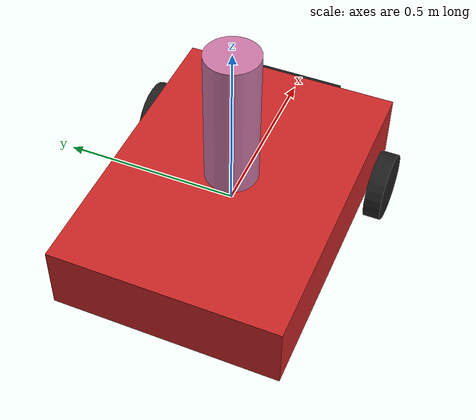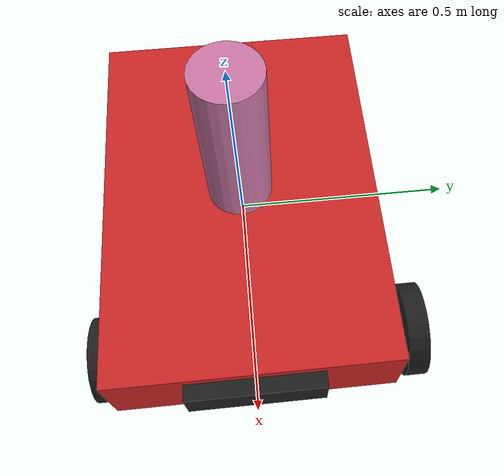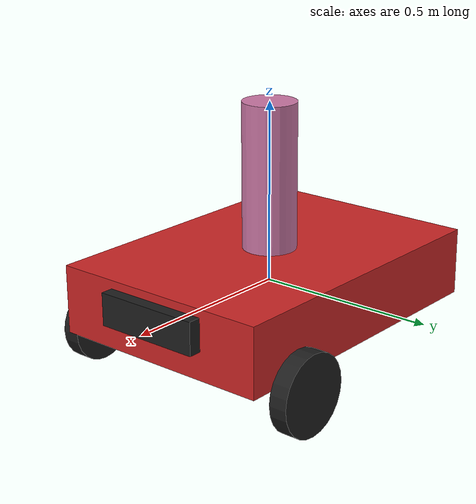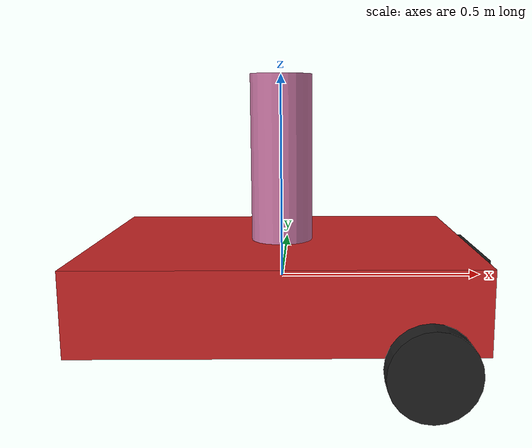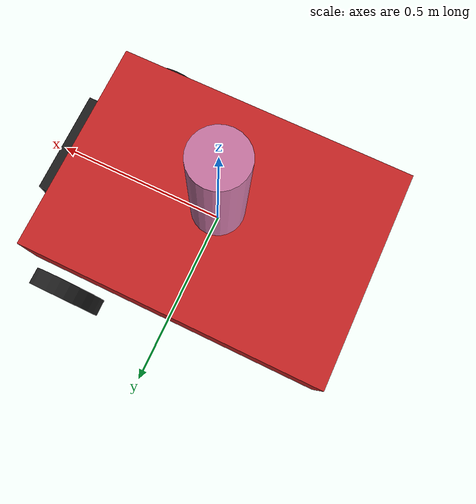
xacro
<?xml version="1.0"?>
<robot xmlns:xacro="http://www.ros.org/wiki/xacro" name="my_robot">

    <!--................................ XACRO CONSTANTS .............................. -->

    <xacro:property name="chassis_mass" value="70"/>
    <xacro:property name="chassis_length" value="0.9"/>
    <xacro:property name="chassis_width" value="0.64"/>
    <xacro:property name="chassis_height" value="0.19"/>

    <xacro:property name="traction_wheel_mass_1" value="1"/>
    <xacro:property name="traction_wheel_base_1" value="0.88"/>
    <xacro:property name="traction_max_wheel_torque_1" value="20000"/>
    <xacro:property name="traction_wheel_static_friction_1" value="0.9"/>
    <xacro:property name="traction_wheel_dynamic_friction_1" value="0.8"/>

    <xacro:property name="traction_wheel_mass_2" value="1"/>
    <xacro:property name="traction_wheel_base_2" value="0.88"/>
    <xacro:property name="traction_max_wheel_torque_2" value="20000"/>
    <xacro:property name="traction_wheel_static_friction_2" value="0.5"/>
    <xacro:property name="traction_wheel_dynamic_friction_2" value="0.8"/>

    <xacro:property name="trolley_wheel_mass" value="0.1"/>
    <xacro:property name="trolley_track_width" value="0.54"/>
    <xacro:property name="trolley_wheel_friction" value="0.0"/>
    <xacro:property name="trolley_wheel_radius" value="0.06"/>
    <!-- a small constant -->
    <xacro:property name="eps" value="0.002"/>

    <xacro:property name="traction_wheel_radius_1" value="0.11"/>
    <xacro:property name="traction_wheel_width_1" value="0.05"/>
    <xacro:property name="traction_track_width_1" value="0.75"/>

    <xacro:property name="traction_wheel_radius_2" value="0.1"/>
    <xacro:property name="traction_wheel_width_2" value="0.05"/>
    <xacro:property name="traction_track_width_2" value="0.7"/>

    <xacro:property name="three_d_lidar_height" value="0.5"/>

    <xacro:property name="three_d_lidar_update_rate" value="30"/>
    <xacro:property name="three_d_lidar_horizontal_sample_size" value="361"/>
    <xacro:property name="three_d_lidar_vertical_sample_size" value="181"/>
    <xacro:property name="three_d_lidar_horizontal_min_angle" value="0"/>
    <xacro:property name="three_d_lidar_horizontal_max_angle" value="360"/>
    <xacro:property name="three_d_lidar_vertical_min_angle" value="0"/>
    <xacro:property name="three_d_lidar_vertical_max_angle" value="180"/>
    <xacro:property name="three_d_lidar_min_range" value="0.55"/>
    <xacro:property name="three_d_lidar_max_range" value="16"/>

    <xacro:property name="camera_baseline" value="0.06"/>
    <xacro:property name="camera_height" value="0.10"/>
    <xacro:property name="camera_horizontal_fov" value="60"/>

    <xacro:arg name="robot_namespace" default=""/>
    <xacro:arg name="wheel_odom_topic" default="odom" />
    <xacro:arg name="camera_enabled" default="true" />
    <xacro:arg name="three_d_lidar_height" default="0" />
    <xacro:arg name="publish_wheel_odom_tf" default="true" />
    <xacro:arg name="conveyor_enabled" default="false"/>
    <xacro:arg name="ground_truth_frame" default="map"/>
    <xacro:arg name="sim_gz" default="false" />

    <!-- ............................... LOAD MACROS ................................. -->

    <xacro:include filename="$(find simple_amr_sim)/urdf/materials.xacro"/>
    <xacro:include filename="$(find simple_amr_sim)/urdf/macros.xacro"/>

    <xacro:if value="$(arg sim_gz)">
        <xacro:include filename="$(find simple_amr_sim)/urdf/gz.xacro"/>
    </xacro:if>

    <!-- ................................ BASE LINK .................................. -->

    <link name="base_link"/>

    <link name="chassis_link">

        <collision>
            <origin xyz="0 0 0" rpy="0 0 0" />
            <geometry>
                <box size="${chassis_length} ${chassis_width} ${chassis_height}"/>
            </geometry>
        </collision>

        <visual>
            <origin xyz="0 0 0" rpy="0 0 0" />
            <geometry>
                <box size="${chassis_length} ${chassis_width} ${chassis_height}"/>
            </geometry>
            <material name="red"/>
        </visual>

        <inertial>
            <mass value="${chassis_mass}" />
            <xacro:box_inertia m="${chassis_mass}" x="${chassis_length}" y="${chassis_width}" z = "${chassis_height}"/>
        </inertial>

    </link>

    <joint name="chassis_joint" type="fixed">
        <parent link="base_link"/>
        <child link="chassis_link"/>
        <origin xyz="0.0 0 0" rpy="0 0 0.0" />
    </joint>

    <!-- ................................ WHEELS ..................................... -->

    <xacro:traction_wheel_1 cardinality="middle" dexterity="left" origin_x="${chassis_width/2}" origin_y="${traction_track_width_1/2}" origin_z="-${chassis_height/2+2*trolley_wheel_radius+eps-traction_wheel_radius_1}"/>

    <xacro:traction_wheel_2 cardinality="middle" dexterity="right" origin_x="${chassis_width/2}" origin_y="-${traction_track_width_2/2}" origin_z="-${chassis_height/2+2*trolley_wheel_radius+eps-traction_wheel_radius_2}"/>

    <!-- ............................. CAMERA ........................................ -->

    <xacro:if value="$(arg camera_enabled)">

        <!-- KINECT CAMERA -->

        <link name="kinect_camera">

            <collision>
                <origin xyz="0 0 0" rpy="0 0 0" />
                <geometry>
                    <box size="0.07 0.3 0.09"/>
                </geometry>
            </collision>

            <visual>
                <origin xyz="0 0 0" rpy="0 0 0" />
                <geometry>
                    <box size="0.07 0.3 0.09"/>
                </geometry>
                <material name="black"/>
            </visual>

            <inertial>
                <mass value="0.01"/>
                <xacro:box_inertia m="0.01" x="0.07" y="0.3" z = "0.09"/>
            </inertial>

        </link>

        <joint name="kinect_camera_joint" type="fixed">
            <origin rpy="0 0 0" xyz="${chassis_length/2} 0 ${chassis_height/7}"/>
            <parent link="base_link"/>
            <child link="kinect_camera"/>
        </joint>

        <link name="kinect_camera_optical"/>

        <joint name="kinect_camera_optical_joint" type="fixed">
            <origin xyz="0 0 0" rpy="${-pi/2} 0 ${-pi/2}"/>
            <parent link="kinect_camera"/>
            <child link="kinect_camera_optical"/>
        </joint>

    </xacro:if>
        <!-- ............................. 3D LIDAR STAND ........................................ -->

        <link name="three_d_lidar_stand">
            <collision>
                <origin xyz="0 0 0" rpy="0 0 0" />
                <geometry>
                    <cylinder length="${three_d_lidar_height}" radius="0.075"/>
                </geometry>
            </collision>

            <visual>
                <origin xyz="0 0 0" rpy="0 0 0" />
                <geometry>
                    <cylinder length="${three_d_lidar_height}" radius="0.075"/>
                </geometry>
                <material name="aluminium"/>
            </visual>

            <inertial>
                <origin xyz="0 0 0" rpy="0 0 0" />
                <mass value="0.1"/>
                <xacro:cylinder_inertia m="0.1" r="0.075" h="${three_d_lidar_height}"/>
            </inertial>
        </link>

        <joint name="three_d_lidar_joint" type="fixed">
            <parent link="base_link"/>
            <child link="three_d_lidar_stand"/>
            <origin xyz="0 0 ${three_d_lidar_height/2}" rpy="0 0 0" />
        </joint>

    <!-- ............................. 3D LIDAR ........................................ -->

        <link name="three_d_lidar">

        </link>

        <joint name="three_d_lidar_stand_joint" type="fixed">
            <parent link="three_d_lidar_stand"/>
            <child link="three_d_lidar"/>
            <origin xyz="0 0 ${three_d_lidar_height/2}" rpy="0 0 0" />
        </joint>

        <gazebo reference="three_d_lidar">
            <material>Gazebo/White</material>
        </gazebo>

    <!-- ............................. IMU ........................................ -->

    <link name="imu_frame"/>

    <joint name="imu_joint" type="fixed">
        <parent link="base_link"/>
        <child link="imu_frame"/>
        <origin xyz="0.0 0.0 0.08" rpy="0.0 0.0 0.0"/>
    </joint>

    <!-- ............................. GPS ........................................ -->

    <link name="gps_frame"/>

    <joint name="gps_joint" type="fixed">
        <parent link="base_link"/>
        <child link="gps_frame"/>
        <origin xyz="0.0 0.0 0.08" rpy="0.0 0.0 0.0"/>
    </joint>

</robot>

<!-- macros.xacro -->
<robot xmlns:xacro="http://www.ros.org/wiki/xacro" name="simple_amr_sim">

    <!--................................ INERTIA MATRICES .............................. -->

    <xacro:macro name="cylinder_inertia" params="m r h">
        <inertia ixx="${m * (3 * r * r + h * h) / 12}" ixy="0" ixz="0" iyy="${m * (3 * r * r + h * h) / 12}" iyz="0" izz="${m * r * r / 2}" />
    </xacro:macro>

    <xacro:macro name="box_inertia" params="m x y z">
        <inertia ixx="${m * (y * y + z * z) / 12}" ixy="0" ixz="0" iyy="${m * (x * x + z * z) / 12}" iyz="0" izz="${m * (y * y + x * x) / 12}" />
    </xacro:macro>

    <xacro:macro name="sphere_inertia" params="m r">
        <inertia ixx="${2 * m * r * r / 5}" ixy="0" ixz="0" iyy="${2 * m * r * r / 5}" iyz="0" izz="${2 * m * r * r / 5}" />
    </xacro:macro>

    <!-- ............................... TROLLEY WHEEL DEFINITION .............................. -->

    <xacro:macro name="trolley_wheel" params="cardinality dexterity origin_x origin_y origin_z">
        <link name="${cardinality}_${dexterity}_wheel">

            <mu>0.0</mu>
        </link>

        <joint name="${cardinality}_${dexterity}_wheel_joint" type="fixed">
            <parent link="base_link"/>
            <child link="${cardinality}_${dexterity}_wheel"/>
            <origin xyz="${origin_x} ${origin_y} ${origin_z}" rpy="0 0 0" />
            <axis xyz="0 1 0" rpy="0 0 0" />
        </joint>

        <gazebo reference="${cardinality}_${dexterity}_wheel">
            <material>Gazebo/Black</material>
        </gazebo>
    </xacro:macro>

    <xacro:macro name="traction_wheel_1" params="cardinality dexterity origin_x origin_y origin_z">
        <link name="${cardinality}_${dexterity}_wheel">
            <collision>
                <origin xyz="0 0 0" rpy="${pi/2} 0 0" />
                <geometry>
                    <cylinder length="${traction_wheel_width_1}" radius="${traction_wheel_radius_1}"/>
                </geometry>
            </collision>

            <visual>
                <origin xyz="0 0 0" rpy="${pi/2} 0 0" />
                <geometry>
                    <cylinder length="${traction_wheel_width_1}" radius="${traction_wheel_radius_1}"/>
                </geometry>
                <material name="black"/>
            </visual>

            <inertial>
                <origin xyz="0 0 0" rpy="${pi/2} 0 0" />
                <mass value="${traction_wheel_mass_1}"/>
                <xacro:cylinder_inertia m="${traction_wheel_mass_1}" r="${traction_wheel_radius_1}" h="${traction_wheel_width_1}"/>
            </inertial>

            <mu>5.0</mu>
        </link>

        <joint name="${cardinality}_${dexterity}_wheel_joint" type="continuous">
            <parent link="base_link"/>
            <child link="${cardinality}_${dexterity}_wheel"/>
            <origin xyz="${origin_x} ${origin_y} ${origin_z}" rpy="0 0 0" />
            <axis xyz="0 1 0" rpy="0 0 0" />
        </joint>

        <gazebo reference="${cardinality}_${dexterity}_wheel">
            <material>Gazebo/Black</material>
            <mu1>${traction_wheel_static_friction_1}</mu1> <!-- Static friction coefficient -->
    	    <mu2>${traction_wheel_dynamic_friction_1}</mu2> <!-- Dynamic friction coefficient -->
        </gazebo>
    </xacro:macro>

     <xacro:macro name="traction_wheel_2" params="cardinality dexterity origin_x origin_y origin_z">
        <link name="${cardinality}_${dexterity}_wheel">
            <collision>
                <origin xyz="0 0 0" rpy="${pi/2} 0 0" />
                <geometry>
                    <cylinder length="${traction_wheel_width_2}" radius="${traction_wheel_radius_2}"/>
                </geometry>
            </collision>

            <visual>
                <origin xyz="0 0 0" rpy="${pi/2} 0 0" />
                <geometry>
                    <cylinder length="${traction_wheel_width_2}" radius="${traction_wheel_radius_2}"/>
                </geometry>
                <material name="black"/>
            </visual>

            <inertial>
                <origin xyz="0 0 0" rpy="${pi/2} 0 0" />
                <mass value="${traction_wheel_mass_2}"/>
                <xacro:cylinder_inertia m="${traction_wheel_mass_2}" r="${traction_wheel_radius_2}" h="${traction_wheel_width_2}"/>
            </inertial>

            <mu>5.0</mu>
        </link>

        <joint name="${cardinality}_${dexterity}_wheel_joint" type="continuous">
            <parent link="base_link"/>
            <child link="${cardinality}_${dexterity}_wheel"/>
            <origin xyz="${origin_x} ${origin_y} ${origin_z}" rpy="0 0 0" />
            <axis xyz="0 1 0" rpy="0 0 0" />
        </joint>

        <gazebo reference="${cardinality}_${dexterity}_wheel">
            <material>Gazebo/Black</material>
            <mu1>${traction_wheel_static_friction_2}</mu1> <!-- Static friction coefficient -->
    	    <mu2>${traction_wheel_dynamic_friction_2}</mu2> <!-- Dynamic friction coefficient -->
        </gazebo>
    </xacro:macro>

</robot>
